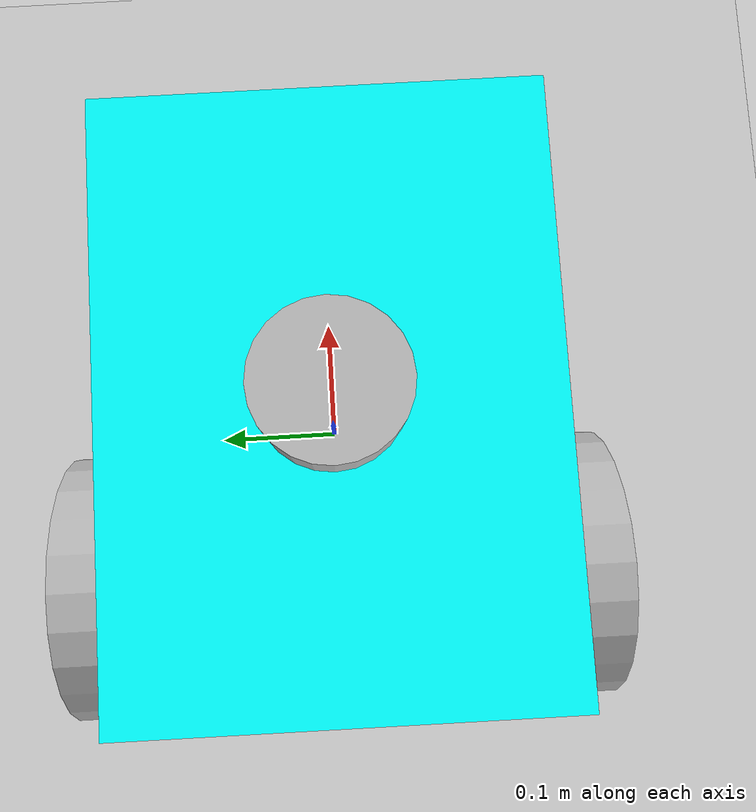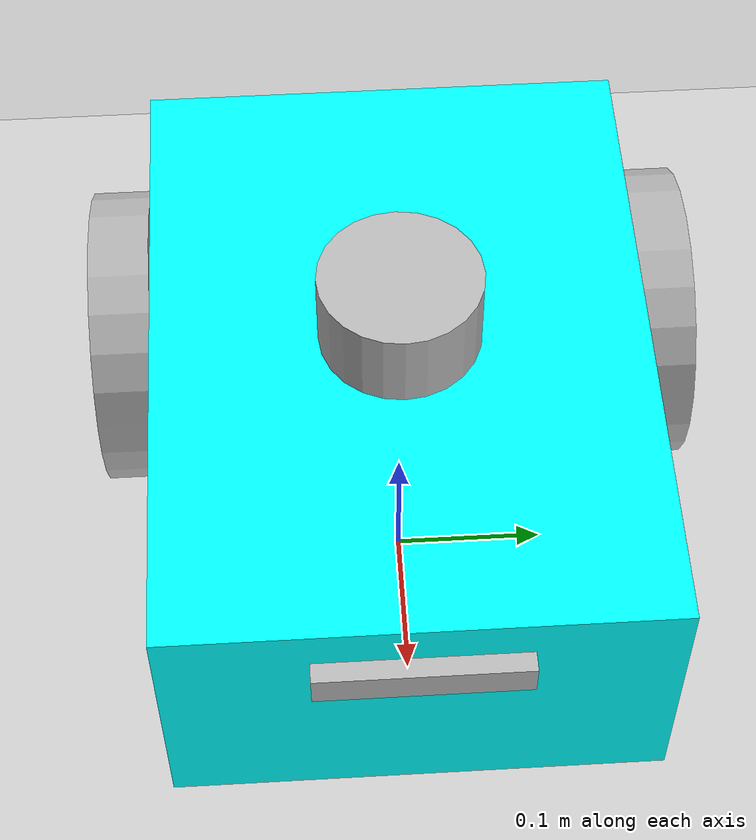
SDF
<sdf version="1.10">
 <world name="my_world">
  <physics name="1ms" type="ignored">
   <max_step_size>0.001</max_step_size>
   <real_time_factor>1</real_time_factor>
   <real_time_update_rate>1000</real_time_update_rate>
  </physics>
  <plugin name="gz::sim::systems::Physics" filename="gz-sim-physics-system"/>
  <plugin name="gz::sim::systems::UserCommands" filename="gz-sim-user-commands-system"/>
  <plugin name="gz::sim::systems::SceneBroadcaster" filename="gz-sim-scene-broadcaster-system"/>
  <plugin name="gz::sim::systems::Imu" filename="gz-sim-imu-system"/>
  <plugin name="gz::sim::systems::Sensors" filename="gz-sim-sensors-system">
   <render_engine>ogre2</render_engine>
  </plugin>
  <gravity>0 0 -9.8000000000000007</gravity>
  <magnetic_field>6.0000000000000002e-06 2.3e-05 -4.1999999999999998e-05</magnetic_field>
  <atmosphere type="adiabatic"/>
  <physics type="ode">
   <max_step_size>0.001</max_step_size>
   <real_time_factor>1</real_time_factor>
   <real_time_update_rate>1000</real_time_update_rate>
  </physics>
  <scene>
   <ambient>0.400000006 0.400000006 0.400000006 1</ambient>
   <background>0.699999988 0.699999988 0.699999988 1</background>
   <shadows>true</shadows>
  </scene>
  <spherical_coordinates>
   <surface_model>EARTH_WGS84</surface_model>
   <latitude_deg>0</latitude_deg>
   <longitude_deg>0</longitude_deg>
   <elevation>0</elevation>
   <heading_deg>0</heading_deg>
  </spherical_coordinates>
  <model name="ground_plane">
   <static>true</static>
   <link name="link">
    <collision name="collision">
     <geometry><plane><normal>0 0 1</normal><size>100 100</size></plane></geometry>
     <surface><friction><ode><mu>100</mu><mu2>50</mu2></ode></friction></surface>
    </collision>
    <visual name="visual">
     <cast_shadows>false</cast_shadows>
     <geometry><plane><normal>0 0 1</normal><size>100 100</size></plane></geometry>
     <material>
      <script><uri>file://media/materials/scripts/gazebo.material</uri><name>Gazebo/Grey</name></script>
     </material>
    </visual>
    <inertial>
     <mass>1</mass>
     <inertia><ixx>1</ixx><ixy>0</ixy><ixz>0</ixz><iyy>1</iyy><iyz>0</iyz><izz>1</izz></inertia>
    </inertial>
   </link>
  </model>
  <model name="test_bot" canonical_link="base_link">
   <link name="base_link">
    <must_be_base_link>true</must_be_base_link>
    <visual name="base_link_visual">
     <geometry><box><size>0.41999999999999998 0.31 0.17999999999999999</size></box></geometry>
     <material><ambient>0 1 1 1</ambient><diffuse>0 1 1 1</diffuse></material>
    </visual>
    <collision name="base_link_collision">
     <geometry><box><size>0.41999999999999998 0.31 0.17999999999999999</size></box></geometry>
    </collision>
    <inertial>
     <mass>1</mass>
     <inertia><ixx>1</ixx><ixy>0</ixy><ixz>0</ixz><iyy>1</iyy><iyz>0</iyz><izz>1</izz></inertia>
    </inertial>
   </link>
   <link name="base_footprint">
    <pose>-4.4544766507295918e-25 2.256949153578792e-35 -0.15000000000000002 0 -1.7725089226600661e-38 0</pose>
    <inertial>
     <pose>0 0 0 1.5707963267948963 0 1.5707963267948963</pose>
     <mass>15</mass>
     <inertia>
      <ixx>0.26100000000000001</ixx>
      <ixy>0</ixy>
      <ixz>0</ixz>
      <iyy>0.34062499999999996</iyy>
      <iyz>0</iyz>
      <izz>0.16062500000000002</izz>
     </inertia>
    </inertial>
   </link>
   <joint name="base_joint" type="fixed"><parent>base_link</parent><child>base_footprint</child></joint>
   <link name="drivewhl_l_link">
    <pose>-0.12 0.17999999999999999 -0.050000000000000044 -2.4583124694690556e-38 -8.1793273330468483e-19 1.0053671187349071e-56</pose>
    <visual name="drivewhl_l_link_visual">
     <pose relative_to="drivewhl_l_link">0 0 0 1.5707963267948963 0 0</pose>
     <geometry>
      <cylinder><radius>0.10000000000000001</radius><length>0.040000000000000001</length></cylinder>
     </geometry>
     <material>
      <ambient>0.300000012 0.300000012 0.300000012 1</ambient>
      <diffuse>0.699999988 0.699999988 0.699999988 1</diffuse>
     </material>
    </visual>
    <collision name="drivewhl_l_link_collision">
     <pose relative_to="drivewhl_l_link">0 0 0 1.5707963267948963 0 0</pose>
     <geometry>
      <cylinder><radius>0.10000000000000001</radius><length>0.040000000000000001</length></cylinder>
     </geometry>
    </collision>
    <inertial>
     <pose>0 0 0 1.5707963267948963 0 0</pose>
     <mass>0.5</mass>
     <inertia>
      <ixx>0.0013166666666666667</ixx>
      <ixy>0</ixy>
      <ixz>0</ixz>
      <iyy>0.0013166666666666667</iyy>
      <iyz>0</iyz>
      <izz>0.0025000000000000005</izz>
     </inertia>
    </inertial>
   </link>
   <joint name="drivewhl_l_joint" type="revolute">
    <parent>base_link</parent>
    <child>drivewhl_l_link</child>
    <axis>
     <xyz>0 1 0</xyz>
     <limit>
      <lower>-inf</lower>
      <upper>inf</upper>
      <effort>inf</effort>
      <velocity>inf</velocity>
      <stiffness>100000000</stiffness>
      <dissipation>1</dissipation>
     </limit>
     <dynamics>
      <spring_reference>0</spring_reference>
      <spring_stiffness>0</spring_stiffness>
      <damping>0</damping>
      <friction>0</friction>
     </dynamics>
    </axis>
   </joint>
   <link name="drivewhl_r_link">
    <pose>-0.12 -0.17999999999999999 -0.050000000000000044 -2.1478385396357062e-38 -7.1463110968661252e-19 7.6745611950376899e-57</pose>
    <visual name="drivewhl_r_link_visual">
     <pose relative_to="drivewhl_r_link">0 0 0 1.5707963267948963 0 0</pose>
     <geometry>
      <cylinder><radius>0.10000000000000001</radius><length>0.040000000000000001</length></cylinder>
     </geometry>
     <material>
      <ambient>0.300000012 0.300000012 0.300000012 1</ambient>
      <diffuse>0.699999988 0.699999988 0.699999988 1</diffuse>
     </material>
    </visual>
    <collision name="drivewhl_r_link_collision">
     <pose relative_to="drivewhl_r_link">0 0 0 1.5707963267948963 0 0</pose>
     <geometry>
      <cylinder><radius>0.10000000000000001</radius><length>0.040000000000000001</length></cylinder>
     </geometry>
    </collision>
    <inertial>
     <pose>0 0 0 1.5707963267948963 0 0</pose>
     <mass>0.5</mass>
     <inertia>
      <ixx>0.0013166666666666667</ixx>
      <ixy>0</ixy>
      <ixz>0</ixz>
      <iyy>0.0013166666666666667</iyy>
      <iyz>0</iyz>
      <izz>0.0025000000000000005</izz>
     </inertia>
    </inertial>
   </link>
   <joint name="drivewhl_r_joint" type="revolute">
    <parent>base_link</parent>
    <child>drivewhl_r_link</child>
    <axis>
     <xyz>0 1 0</xyz>
     <limit>
      <lower>-inf</lower>
      <upper>inf</upper>
      <effort>inf</effort>
      <velocity>inf</velocity>
      <stiffness>100000000</stiffness>
      <dissipation>1</dissipation>
     </limit>
     <dynamics>
      <spring_reference>0</spring_reference>
      <spring_stiffness>0</spring_stiffness>
      <damping>0</damping>
      <friction>0</friction>
     </dynamics>
    </axis>
   </joint>
   <link name="front_caster">
    <pose>0.14000000000000001 1.2789378536946488e-35 -0.089999999999999969 0 -1.7725089226600661e-38 0</pose>
    <visual name="front_caster_visual">
     <geometry><sphere><radius>0.060000000000000026</radius></sphere></geometry>
     <material><ambient>0 1 1 1</ambient><diffuse>0 1 1 1</diffuse></material>
    </visual>
    <collision name="front_caster_collision">
     <geometry><sphere><radius>0.060000000000000026</radius></sphere></geometry>
     <surface><friction><ode><mu>0.001</mu><mu2>0.001</mu2></ode></friction></surface>
    </collision>
    <inertial>
     <mass>0.5</mass>
     <inertia>
      <ixx>0.00072000000000000059</ixx>
      <ixy>0</ixy>
      <ixz>0</ixz>
      <iyy>0.00072000000000000059</iyy>
      <iyz>0</iyz>
      <izz>0.00072000000000000059</izz>
     </inertia>
    </inertial>
   </link>
   <joint name="caster_joint" type="fixed"><parent>base_link</parent><child>front_caster</child></joint>
   <joint name="imu_joint" type="fixed"><parent>base_link</parent><child>imu_link</child></joint>
   <link name="imu_link">
    <pose>-2.1878268345399541e-26 6.018531076210112e-36 0.010000000000000009 0 -1.7725089226600661e-38 0</pose>
    <visual name="imu_link_visual">
     <geometry><box><size>0.10000000000000001 0.10000000000000001 0.10000000000000001</size></box></geometry>
    </visual>
    <collision name="imu_link_collision">
     <geometry><box><size>0.10000000000000001 0.10000000000000001 0.10000000000000001</size></box></geometry>
    </collision>
    <inertial>
     <pose>0 0 0 1.5707963267948963 0 1.5707963267948963</pose>
     <mass>0.10000000000000001</mass>
     <inertia>
      <ixx>0.00016666666666666669</ixx>
      <ixy>0</ixy>
      <ixz>0</ixz>
      <iyy>0.00016666666666666669</iyy>
      <iyz>0</iyz>
      <izz>0.00016666666666666669</izz>
     </inertia>
    </inertial>
    <sensor name="imu_sensor" type="imu">
     <topic>demo/imu</topic>
     <update_rate>100</update_rate>
     <enable_metrics>false</enable_metrics>
     <imu>
      <orientation_reference_frame>
       <localization>CUSTOM</localization>
       <custom_rpy>0 0 0</custom_rpy>
       <grav_dir_x>1 0 0</grav_dir_x>
      </orientation_reference_frame>
      <angular_velocity>
       <x>
        <noise type="gaussian">
         <mean>0</mean>
         <stddev>0.00020000000000000001</stddev>
         <bias_mean>7.5000000000000002e-06</bias_mean>
         <bias_stddev>7.9999999999999996e-07</bias_stddev>
         <dynamic_bias_stddev>0</dynamic_bias_stddev>
         <dynamic_bias_correlation_time>0</dynamic_bias_correlation_time>
         <precision>0</precision>
        </noise>
       </x>
       <y>
        <noise type="gaussian">
         <mean>0</mean>
         <stddev>0.00020000000000000001</stddev>
         <bias_mean>7.5000000000000002e-06</bias_mean>
         <bias_stddev>7.9999999999999996e-07</bias_stddev>
         <dynamic_bias_stddev>0</dynamic_bias_stddev>
         <dynamic_bias_correlation_time>0</dynamic_bias_correlation_time>
         <precision>0</precision>
        </noise>
       </y>
       <z>
        <noise type="gaussian">
         <mean>0</mean>
         <stddev>0.00020000000000000001</stddev>
         <bias_mean>7.5000000000000002e-06</bias_mean>
         <bias_stddev>7.9999999999999996e-07</bias_stddev>
         <dynamic_bias_stddev>0</dynamic_bias_stddev>
         <dynamic_bias_correlation_time>0</dynamic_bias_correlation_time>
         <precision>0</precision>
        </noise>
       </z>
      </angular_velocity>
      <linear_acceleration>
       <x>
        <noise type="gaussian">
         <mean>0</mean>
         <stddev>0.017000000000000001</stddev>
         <bias_mean>0.10000000000000001</bias_mean>
         <bias_stddev>0.001</bias_stddev>
         <dynamic_bias_stddev>0</dynamic_bias_stddev>
         <dynamic_bias_correlation_time>0</dynamic_bias_correlation_time>
         <precision>0</precision>
        </noise>
       </x>
       <y>
        <noise type="gaussian">
         <mean>0</mean>
         <stddev>0.017000000000000001</stddev>
         <bias_mean>0.10000000000000001</bias_mean>
         <bias_stddev>0.001</bias_stddev>
         <dynamic_bias_stddev>0</dynamic_bias_stddev>
         <dynamic_bias_correlation_time>0</dynamic_bias_correlation_time>
         <precision>0</precision>
        </noise>
       </y>
       <z>
        <noise type="gaussian">
         <mean>0</mean>
         <stddev>0.017000000000000001</stddev>
         <bias_mean>0.10000000000000001</bias_mean>
         <bias_stddev>0.001</bias_stddev>
         <dynamic_bias_stddev>0</dynamic_bias_stddev>
         <dynamic_bias_correlation_time>0</dynamic_bias_correlation_time>
         <precision>0</precision>
        </noise>
       </z>
      </linear_acceleration>
      <enable_orientation>true</enable_orientation>
     </imu>
    </sensor>
   </link>
   <plugin name="gz::sim::systems::DiffDrive" filename="gz-sim-diff-drive-system">
    <left_joint>drivewhl_l_joint</left_joint>
    <right_joint>drivewhl_r_joint</right_joint>
    <wheel_separation>0.4</wheel_separation>
    <wheel_radius>0.1</wheel_radius>
    <max_linear_acceleration>0.1</max_linear_acceleration>
    <topic>/demo/cmd_vel</topic>
    <odom_topic>/demo/odom</odom_topic>
    <tf_topic>/tf</tf_topic>
    <frame_id>odom</frame_id>
    <child_frame_id>base_link</child_frame_id>
   </plugin>
   <plugin name="gz::sim::systems::JointStatePublisher" filename="gz-sim-joint-state-publisher-system">
    <topic>joint_states</topic>
   </plugin>
   <joint name="lidar_joint" type="fixed"><parent>base_link</parent><child>lidar_link</child></joint>
   <link name="lidar_link">
    <pose>5.9850719106937121e-25 -4.8148248609680896e-35 0.11999999999999994 0 -1.7725089226600661e-38 0</pose>
    <visual name="lidar_link_visual">
     <geometry><cylinder><radius>0.050799999999999998</radius><length>0.055</length></cylinder></geometry>
    </visual>
    <collision name="lidar_link_collision">
     <geometry><cylinder><radius>0.050799999999999998</radius><length>0.055</length></cylinder></geometry>
    </collision>
    <inertial>
     <pose>0 0 0 1.5707963267948963 0 0</pose>
     <mass>0.125</mass>
     <inertia>
      <ixx>0.00011215541666666665</ixx>
      <ixy>0</ixy>
      <ixz>0</ixz>
      <iyy>0.00011215541666666665</iyy>
      <iyz>0</iyz>
      <izz>0.00016129</izz>
     </inertia>
    </inertial>
    <sensor name="lidar" type="gpu_lidar">
     <topic>scan</topic>
     <update_rate>5</update_rate>
     <enable_metrics>false</enable_metrics>
     <lidar>
      <scan>
       <horizontal>
        <samples>360</samples>
        <resolution>1</resolution>
        <min_angle>0</min_angle>
        <max_angle>6.2800000000000002</max_angle>
       </horizontal>
       <vertical>
        <samples>1</samples>
        <min_angle>0</min_angle>
        <max_angle>0</max_angle>
        <resolution>1</resolution>
       </vertical>
      </scan>
      <range><min>0.12</min><max>3.5</max><resolution>0.014999999999999999</resolution></range>
      <noise><type>gaussian</type><mean>0</mean><stddev>0.01</stddev></noise>
      <visibility_mask>4294967295</visibility_mask>
     </lidar>
    </sensor>
   </link>
   <joint name="camera_joint" type="fixed"><parent>base_link</parent><child>camera_link</child></joint>
   <link name="camera_link">
    <pose>0.215 3.76158192263132e-36 0.050000000000000044 0 -1.7725089226600661e-38 0</pose>
    <visual name="camera_link_visual">
     <geometry><box><size>0.014999999999999999 0.13 0.022200000000000001</size></box></geometry>
    </visual>
    <collision name="camera_link_collision">
     <geometry><box><size>0.014999999999999999 0.13 0.022200000000000001</size></box></geometry>
    </collision>
    <inertial>
     <pose>0 0 0 1.5707963267948963 0 1.5707963267948963</pose>
     <mass>0.035000000000000003</mass>
     <inertia>
      <ixx>5.0729116666666679e-05</ixx>
      <ixy>0</ixy>
      <ixz>0</ixz>
      <iyy>4.9947916666666673e-05</iyy>
      <iyz>0</iyz>
      <izz>2.0937e-06</izz>
     </inertia>
    </inertial>
    <sensor name="depth_camera" type="rgbd_camera">
     <always_on>true</always_on>
     <visualize>true</visualize>
     <update_rate>5</update_rate>
     <topic>depth_camera</topic>
     <camera>
      <horizontal_fov>1.0471980000000001</horizontal_fov>
      <image><width>640</width><height>480</height></image>
      <clip><near>0.050000000000000003</near><far>3</far></clip>
     </camera>
     <gz_frame_id>camera_link</gz_frame_id>
     <baseline>0.2</baseline>
     <pointCloudCutoff>0.5</pointCloudCutoff>
     <pointCloudCutoffMax>3.0</pointCloudCutoffMax>
     <distortionK1>0</distortionK1>
     <distortionK2>0</distortionK2>
     <distortionK3>0</distortionK3>
     <distortionT1>0</distortionT1>
     <distortionT2>0</distortionT2>
     <CxPrime>0</CxPrime>
     <Cx>0</Cx>
     <Cy>0</Cy>
     <focalLength>0</focalLength>
     <hackBaseline>0</hackBaseline>
    </sensor>
   </link>
   <pose>2.0264226246616349e-09 -8.3338970122421798e-20 0.14999915137825728 5.8975182586493641e-19 1.350948344587795e-08 6.0110336708096151e-20</pose>
   <static>false</static>
  </model>
  <light name="sun" type="directional">
   <pose>0 0 10 0 0 0</pose>
   <intensity>1</intensity>
   <direction>-0.5 0.10000000000000001 -0.90000000000000002</direction>
   <diffuse>0.800000012 0.800000012 0.800000012 1</diffuse>
   <specular>0.200000003 0.200000003 0.200000003 1</specular>
   <attenuation>
    <range>1000</range>
    <linear>0.01</linear>
    <constant>0.90000000000000002</constant>
    <quadratic>0.001</quadratic>
   </attenuation>
   <spot><inner_angle>0</inner_angle><outer_angle>0</outer_angle><falloff>0</falloff></spot>
  </light>
 </world>
</sdf>
